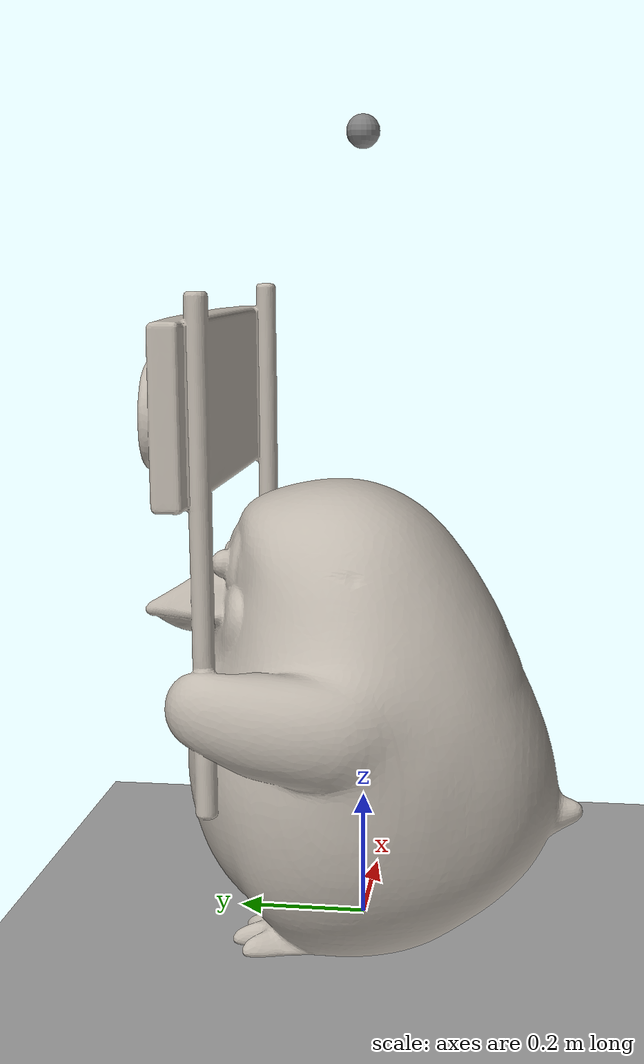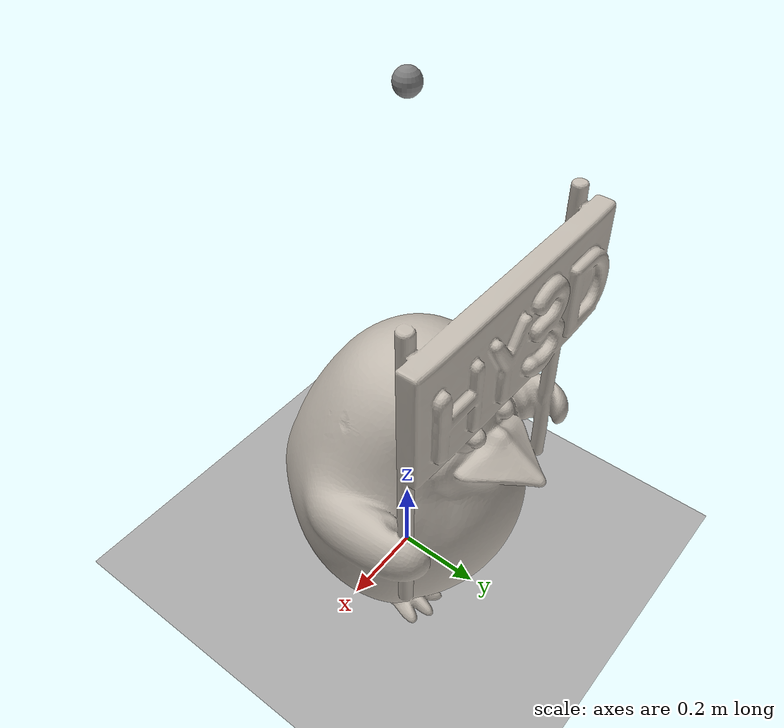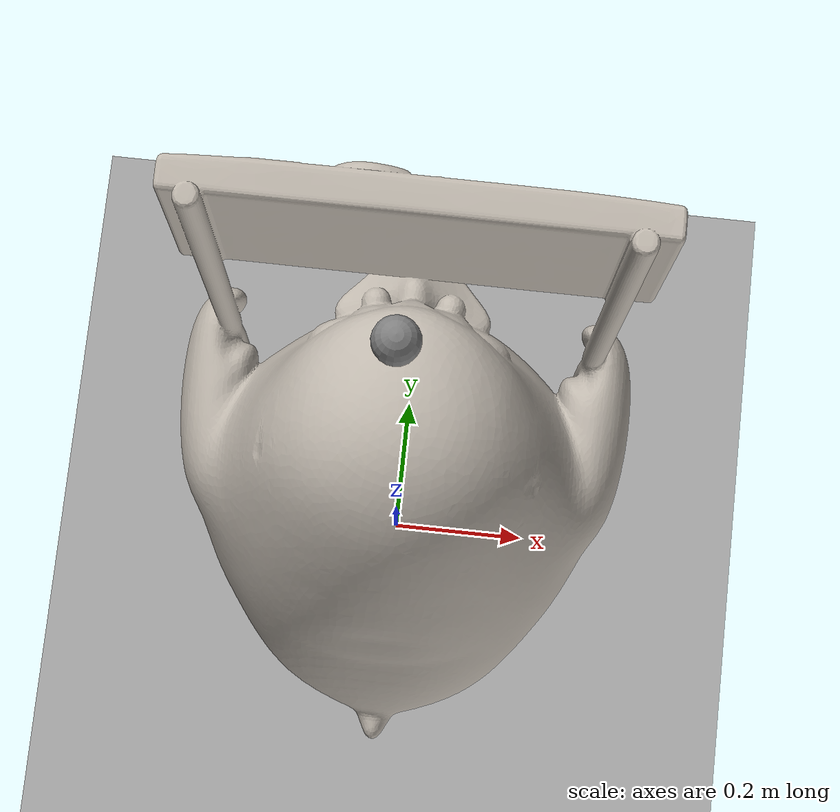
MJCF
<mujoco model="penguin"><compiler angle="radian" inertiafromgeom="false" /><visual><global offwidth="512" offheight="512" /></visual><option timestep="0.002"><flag energy="enable" autoreset="disable" /></option><asset><mesh name="visual_000" file="meshes/visual_000.obj" /><texture name="visual_000_tex" type="2d" file="textures/visual_000.png" /><material name="visual_000_mat" rgba="1 1 1 1" specular="0" shininess="0" texture="visual_000_tex" texuniform="false" /><mesh name="collision_mesh" file="meshes/collision.obj" /></asset><worldbody><body name="penguin"><geom name="visual_000" type="mesh" mesh="visual_000" material="visual_000_mat" mass="0" contype="0" conaffinity="0" group="2" /><geom name="asset_collision" type="plane" mass="0" contype="1" conaffinity="1" group="3" rgba="0 1 0 .25" size="5 5 .1" pos="-3.5532580853966963e-06 0.018124310570482787 0.8028286668321513" quat="0.9072858715537894 0.42051437607086983 8.244154176174905e-05 -0.0" /></body><geom name="ground" type="plane" size="5 5 .1" rgba=".65 .65 .65 1" /><light pos="2 -3 5" dir="-2 3 -5" /><body name="probe_body" pos="0 0 1.2221956863999368"><freejoint /><inertial pos="0 0 0" mass=".1" diaginertia="2.4885669235395467e-05 2.4885669235395467e-05 2.4885669235395467e-05" /><geom name="probe" type="sphere" size="0.02494276911020279" mass=".1" /></body></worldbody></mujoco>
